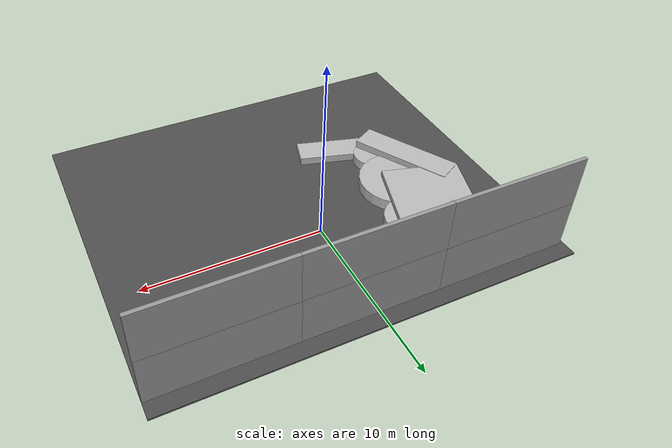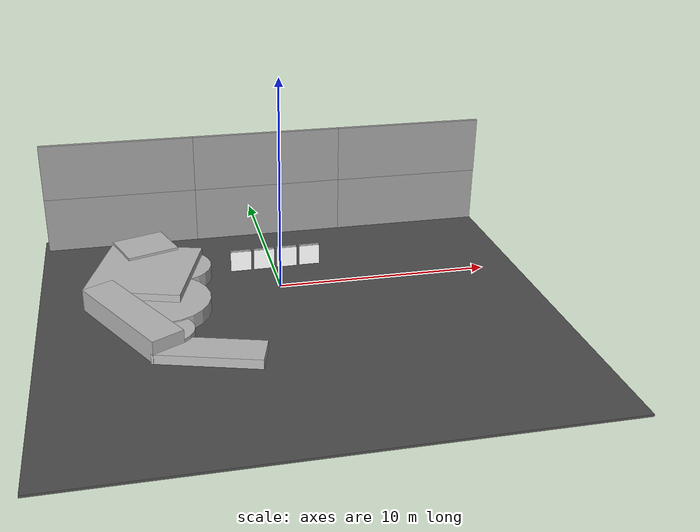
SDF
<sdf version="1.6">
 <world name="default">
  <light name="sun" type="directional">
   <pose>0 0 10 0 -0 0</pose>
   <diffuse>0.8 0.8 0.8 1</diffuse>
   <specular>0.2 0.2 0.2 1</specular>
   <attenuation>
    <range>1000</range>
    <constant>0.9</constant>
    <linear>0.01</linear>
    <quadratic>0.001</quadratic>
   </attenuation>
   <direction>-0.5 0.1 -0.9</direction>
  </light>
  <gravity>0 0 -9.8</gravity>
  <magnetic_field>6e-06 2.3e-05 -4.2e-05</magnetic_field>
  <atmosphere type="adiabatic"/>
  <physics name="default_physics" default="0" type="ode">
   <max_step_size>0.001</max_step_size>
   <real_time_factor>1</real_time_factor>
   <real_time_update_rate>1000</real_time_update_rate>
  </physics>
  <scene><ambient>0.4 0.4 0.4 1</ambient><background>0.7 0.7 0.7 1</background><shadows>1</shadows></scene>
  <audio><device>default</device></audio>
  <spherical_coordinates>
   <surface_model>EARTH_WGS84</surface_model>
   <latitude_deg>0</latitude_deg>
   <longitude_deg>0</longitude_deg>
   <elevation>0</elevation>
   <heading_deg>0</heading_deg>
  </spherical_coordinates>
  <model name="grey_wall">
   <static>1</static>
   <link name="link">
    <pose>0 0 1.4 0 -0 0</pose>
    <collision name="collision"><geometry><box><size>7.5 0.2 2.8</size></box></geometry></collision>
    <visual name="visual">
     <cast_shadows>0</cast_shadows>
     <geometry><box><size>7.5 0.2 2.8</size></box></geometry>
     <material>
      <script>
       <uri>model://grey_wall/materials/scripts</uri>
       <uri>model://grey_wall/materials/textures</uri>
       <name>vrc/grey_wall</name>
      </script>
     </material>
    </visual>
   </link>
   <pose>0.425107 6.09288 0 0 -0 0</pose>
  </model>
  <model name="grey_wall_clone">
   <static>1</static>
   <link name="link">
    <pose>0 0 1.4 0 -0 0</pose>
    <collision name="collision"><geometry><box><size>7.5 0.2 2.8</size></box></geometry></collision>
    <visual name="visual">
     <cast_shadows>0</cast_shadows>
     <geometry><box><size>7.5 0.2 2.8</size></box></geometry>
     <material>
      <script>
       <uri>model://grey_wall/materials/scripts</uri>
       <uri>model://grey_wall/materials/textures</uri>
       <name>vrc/grey_wall</name>
      </script>
     </material>
    </visual>
   </link>
   <pose>-7.06982 6.09288 0 0 -0 0</pose>
  </model>
  <model name="grey_wall_clone_clone">
   <static>1</static>
   <link name="link">
    <pose>0 0 1.4 0 -0 0</pose>
    <collision name="collision"><geometry><box><size>7.5 0.2 2.8</size></box></geometry></collision>
    <visual name="visual">
     <cast_shadows>0</cast_shadows>
     <geometry><box><size>7.5 0.2 2.8</size></box></geometry>
     <material>
      <script>
       <uri>model://grey_wall/materials/scripts</uri>
       <uri>model://grey_wall/materials/textures</uri>
       <name>vrc/grey_wall</name>
      </script>
     </material>
    </visual>
   </link>
   <pose>7.89356 6.09616 0 0 -0 0</pose>
  </model>
  <model name="grey_wall_clone_0">
   <static>1</static>
   <link name="link">
    <pose>0 0 1.4 0 -0 0</pose>
    <collision name="collision"><geometry><box><size>7.5 0.2 2.8</size></box></geometry></collision>
    <visual name="visual">
     <cast_shadows>0</cast_shadows>
     <geometry><box><size>7.5 0.2 2.8</size></box></geometry>
     <material>
      <script>
       <uri>model://grey_wall/materials/scripts</uri>
       <uri>model://grey_wall/materials/textures</uri>
       <name>vrc/grey_wall</name>
      </script>
     </material>
    </visual>
   </link>
   <pose>0.425107 6.09288 2.79141 0 -0 0</pose>
  </model>
  <model name="grey_wall_clone_0_clone">
   <static>1</static>
   <link name="link">
    <pose>0 0 1.4 0 -0 0</pose>
    <collision name="collision"><geometry><box><size>7.5 0.2 2.8</size></box></geometry></collision>
    <visual name="visual">
     <cast_shadows>0</cast_shadows>
     <geometry><box><size>7.5 0.2 2.8</size></box></geometry>
     <material>
      <script>
       <uri>model://grey_wall/materials/scripts</uri>
       <uri>model://grey_wall/materials/textures</uri>
       <name>vrc/grey_wall</name>
      </script>
     </material>
    </visual>
   </link>
   <pose>-7.07374 6.09288 2.79141 0 -0 0</pose>
  </model>
  <model name="grey_wall_clone_0_clone_0">
   <static>1</static>
   <link name="link">
    <pose>0 0 1.4 0 -0 0</pose>
    <collision name="collision"><geometry><box><size>7.5 0.2 2.8</size></box></geometry></collision>
    <visual name="visual">
     <cast_shadows>0</cast_shadows>
     <geometry><box><size>7.5 0.2 2.8</size></box></geometry>
     <material>
      <script>
       <uri>model://grey_wall/materials/scripts</uri>
       <uri>model://grey_wall/materials/textures</uri>
       <name>vrc/grey_wall</name>
      </script>
     </material>
    </visual>
   </link>
   <pose>7.90341 6.09288 2.79141 0 -0 0</pose>
  </model>
  <model name="asphalt_plane">
   <static>1</static>
   <link name="link">
    <collision name="collision"><geometry><box><size>22.6823 20 0.1</size></box></geometry></collision>
    <visual name="visual">
     <cast_shadows>0</cast_shadows>
     <geometry><box><size>22.6823 20 0.1</size></box></geometry>
     <material>
      <script>
       <uri>model://asphalt_plane/materials/scripts</uri>
       <uri>model://asphalt_plane/materials/textures</uri>
       <name>vrc/asphalt</name>
      </script>
     </material>
    </visual>
   </link>
   <pose>0.315621 -2.92214 0 0 -0 0</pose>
  </model>
  <model name="TrainingStructure_0">
   <link name="link_0">
    <inertial>
     <mass>21.5791</mass>
     <inertia><ixx>45.0346</ixx><ixy>0</ixy><ixz>0</ixz><iyy>36.626</iyy><iyz>0</iyz><izz>78.0641</izz></inertia>
    </inertial>
    <pose>0.119568 2.23673 0.114789 0 0 -0.639786</pose>
    <visual name="visual">
     <geometry><box><size>4.40084 4.90341 1</size></box></geometry>
     <material>
      <lighting>1</lighting>
      <script>
       <uri>/root/model_editor_models/TrainingStructure/materials/scripts</uri>
       <uri>/root/model_editor_models/TrainingStructure/materials/textures</uri>
       <name>TrainingStructure/Diffuse</name>
      </script>
      <emissive>0 0 0 1</emissive>
     </material>
    </visual>
    <collision name="collision">
     <geometry><box><size>4.40084 4.90341 1</size></box></geometry>
     <surface>
      <friction>
       <ode><mu>1</mu><mu2>1</mu2><fdir1>0 0 0</fdir1><slip1>0</slip1><slip2>0</slip2></ode>
       <torsional>
        <coefficient>1</coefficient>
        <patch_radius>0</patch_radius>
        <surface_radius>0</surface_radius>
        <use_patch_radius>1</use_patch_radius>
        <ode><slip>0</slip></ode>
       </torsional>
      </friction>
      <bounce><restitution_coefficient>0</restitution_coefficient><threshold>1e+06</threshold></bounce>
      <contact>
       <collide_without_contact>0</collide_without_contact>
       <collide_without_contact_bitmask>1</collide_without_contact_bitmask>
       <collide_bitmask>1</collide_bitmask>
       <ode>
        <soft_cfm>0</soft_cfm>
        <soft_erp>0.2</soft_erp>
        <kp>1e+13</kp>
        <kd>1</kd>
        <max_vel>0.01</max_vel>
        <min_depth>0</min_depth>
       </ode>
       <bullet>
        <split_impulse>1</split_impulse>
        <split_impulse_penetration_threshold>-0.01</split_impulse_penetration_threshold>
        <soft_cfm>0</soft_cfm>
        <soft_erp>0.2</soft_erp>
        <kp>1e+13</kp>
        <kd>1</kd>
       </bullet>
      </contact>
     </surface>
    </collision>
   </link>
   <link name="link_1">
    <inertial>
     <mass>12.8917</mass>
     <inertia><ixx>16.369</ixx><ixy>0</ixy><ixz>0</ixz><iyy>16.369</iyy><iyz>0</iyz><izz>31.8224</izz></inertia>
    </inertial>
    <pose>-0.158587 -0.257007 -0.05951 0 -0 0</pose>
    <visual name="visual">
     <geometry><cylinder><radius>2.22191</radius><length>0.652816</length></cylinder></geometry>
     <material>
      <lighting>1</lighting>
      <script>
       <uri>/root/model_editor_models/TrainingStructure/materials/scripts</uri>
       <uri>/root/model_editor_models/TrainingStructure/materials/textures</uri>
       <name>TrainingStructure/Diffuse</name>
      </script>
      <emissive>0 0 0 1</emissive>
     </material>
    </visual>
    <collision name="collision">
     <geometry><cylinder><radius>2.22191</radius><length>0.652816</length></cylinder></geometry>
     <surface>
      <friction>
       <ode><mu>1</mu><mu2>1</mu2><fdir1>0 0 0</fdir1><slip1>0</slip1><slip2>0</slip2></ode>
       <torsional>
        <coefficient>1</coefficient>
        <patch_radius>0</patch_radius>
        <surface_radius>0</surface_radius>
        <use_patch_radius>1</use_patch_radius>
        <ode><slip>0</slip></ode>
       </torsional>
      </friction>
      <bounce><restitution_coefficient>0</restitution_coefficient><threshold>1e+06</threshold></bounce>
      <contact>
       <collide_without_contact>0</collide_without_contact>
       <collide_without_contact_bitmask>1</collide_without_contact_bitmask>
       <collide_bitmask>1</collide_bitmask>
       <ode>
        <soft_cfm>0</soft_cfm>
        <soft_erp>0.2</soft_erp>
        <kp>1e+13</kp>
        <kd>1</kd>
        <max_vel>0.01</max_vel>
        <min_depth>0</min_depth>
       </ode>
       <bullet>
        <split_impulse>1</split_impulse>
        <split_impulse_penetration_threshold>-0.01</split_impulse_penetration_threshold>
        <soft_cfm>0</soft_cfm>
        <soft_erp>0.2</soft_erp>
        <kp>1e+13</kp>
        <kd>1</kd>
       </bullet>
      </contact>
     </surface>
    </collision>
   </link>
   <link name="link_1_clone">
    <inertial>
     <mass>2.94105</mass>
     <inertia><ixx>1.04406</ixx><ixy>0</ixy><ixz>0</ixz><iyy>1.04406</iyy><iyz>0</iyz><izz>1.93511</izz></inertia>
    </inertial>
    <pose>-0.947783 -2.80294 -0.070976 0 -0 0</pose>
    <visual name="visual">
     <geometry><cylinder><radius>1.14714</radius><length>0.558724</length></cylinder></geometry>
     <material>
      <lighting>1</lighting>
      <script>
       <uri>/root/model_editor_models/TrainingStructure/materials/scripts</uri>
       <uri>/root/model_editor_models/TrainingStructure/materials/textures</uri>
       <name>TrainingStructure/Diffuse</name>
      </script>
      <shader type="pixel"/>
      <emissive>0 0 0 1</emissive>
     </material>
    </visual>
    <collision name="collision">
     <geometry><cylinder><radius>1.14714</radius><length>0.558724</length></cylinder></geometry>
     <surface>
      <friction>
       <ode><mu>1</mu><mu2>1</mu2><fdir1>0 0 0</fdir1><slip1>0</slip1><slip2>0</slip2></ode>
       <torsional>
        <coefficient>1</coefficient>
        <patch_radius>0</patch_radius>
        <surface_radius>0</surface_radius>
        <use_patch_radius>1</use_patch_radius>
        <ode><slip>0</slip></ode>
       </torsional>
      </friction>
      <bounce><restitution_coefficient>0</restitution_coefficient><threshold>1e+06</threshold></bounce>
      <contact>
       <collide_without_contact>0</collide_without_contact>
       <collide_without_contact_bitmask>1</collide_without_contact_bitmask>
       <collide_bitmask>1</collide_bitmask>
       <ode>
        <soft_cfm>0</soft_cfm>
        <soft_erp>0.2</soft_erp>
        <kp>1e+13</kp>
        <kd>1</kd>
        <max_vel>0.01</max_vel>
        <min_depth>0</min_depth>
       </ode>
       <bullet>
        <split_impulse>1</split_impulse>
        <split_impulse_penetration_threshold>-0.01</split_impulse_penetration_threshold>
        <soft_cfm>0</soft_cfm>
        <soft_erp>0.2</soft_erp>
        <kp>1e+13</kp>
        <kd>1</kd>
       </bullet>
      </contact>
     </surface>
    </collision>
   </link>
   <link name="link_1_clone_clone">
    <inertial>
     <mass>6.83093</mass>
     <inertia><ixx>4.70981</ixx><ixy>0</ixy><ixz>0</ixz><iyy>4.70981</iyy><iyz>0</iyz><izz>8.93444</izz></inertia>
    </inertial>
    <pose>1.79907 2.40152 -0.059511 0 -0 0</pose>
    <visual name="visual">
     <geometry><cylinder><radius>1.61737</radius><length>0.652816</length></cylinder></geometry>
     <material>
      <lighting>1</lighting>
      <script>
       <uri>/root/model_editor_models/TrainingStructure/materials/scripts</uri>
       <uri>/root/model_editor_models/TrainingStructure/materials/textures</uri>
       <name>TrainingStructure/Diffuse</name>
      </script>
      <shader type="pixel"/>
      <emissive>0 0 0 1</emissive>
     </material>
    </visual>
    <collision name="collision">
     <geometry><cylinder><radius>1.61737</radius><length>0.652816</length></cylinder></geometry>
     <surface>
      <friction>
       <ode><mu>1</mu><mu2>1</mu2><fdir1>0 0 0</fdir1><slip1>0</slip1><slip2>0</slip2></ode>
       <torsional>
        <coefficient>1</coefficient>
        <patch_radius>0</patch_radius>
        <surface_radius>0</surface_radius>
        <use_patch_radius>1</use_patch_radius>
        <ode><slip>0</slip></ode>
       </torsional>
      </friction>
      <bounce><restitution_coefficient>0</restitution_coefficient><threshold>1e+06</threshold></bounce>
      <contact>
       <collide_without_contact>0</collide_without_contact>
       <collide_without_contact_bitmask>1</collide_without_contact_bitmask>
       <collide_bitmask>1</collide_bitmask>
       <ode>
        <soft_cfm>0</soft_cfm>
        <soft_erp>0.2</soft_erp>
        <kp>1e+13</kp>
        <kd>1</kd>
        <max_vel>0.01</max_vel>
        <min_depth>0</min_depth>
       </ode>
       <bullet>
        <split_impulse>1</split_impulse>
        <split_impulse_penetration_threshold>-0.01</split_impulse_penetration_threshold>
        <soft_cfm>0</soft_cfm>
        <soft_erp>0.2</soft_erp>
        <kp>1e+13</kp>
        <kd>1</kd>
       </bullet>
      </contact>
     </surface>
    </collision>
   </link>
   <link name="link_2">
    <inertial>
     <mass>9.3389</mass>
     <inertia><ixx>27.1825</ixx><ixy>0</ixy><ixz>0</ixz><iyy>2.65975</iyy><iyz>0</iyz><izz>28.0899</izz></inertia>
    </inertial>
    <pose>-1.89856 -1.16787 0.114789 0 -0 0.157806</pose>
    <visual name="visual">
     <geometry><box><size>1.51388 5.81397 1.06104</size></box></geometry>
     <material>
      <lighting>1</lighting>
      <script>
       <uri>/root/model_editor_models/TrainingStructure/materials/scripts</uri>
       <uri>/root/model_editor_models/TrainingStructure/materials/textures</uri>
       <name>TrainingStructure/Diffuse</name>
      </script>
      <emissive>0 0 0 1</emissive>
     </material>
    </visual>
    <collision name="collision">
     <geometry><box><size>1.51388 5.81397 1.06104</size></box></geometry>
     <surface>
      <friction>
       <ode><mu>1</mu><mu2>1</mu2><fdir1>0 0 0</fdir1><slip1>0</slip1><slip2>0</slip2></ode>
       <torsional>
        <coefficient>1</coefficient>
        <patch_radius>0</patch_radius>
        <surface_radius>0</surface_radius>
        <use_patch_radius>1</use_patch_radius>
        <ode><slip>0</slip></ode>
       </torsional>
      </friction>
      <bounce><restitution_coefficient>0</restitution_coefficient><threshold>1e+06</threshold></bounce>
      <contact>
       <collide_without_contact>0</collide_without_contact>
       <collide_without_contact_bitmask>1</collide_without_contact_bitmask>
       <collide_bitmask>1</collide_bitmask>
       <ode>
        <soft_cfm>0</soft_cfm>
        <soft_erp>0.2</soft_erp>
        <kp>1e+13</kp>
        <kd>1</kd>
        <max_vel>0.01</max_vel>
        <min_depth>0</min_depth>
       </ode>
       <bullet>
        <split_impulse>1</split_impulse>
        <split_impulse_penetration_threshold>-0.01</split_impulse_penetration_threshold>
        <soft_cfm>0</soft_cfm>
        <soft_erp>0.2</soft_erp>
        <kp>1e+13</kp>
        <kd>1</kd>
       </bullet>
      </contact>
     </surface>
    </collision>
   </link>
   <link name="link_2_clone">
    <inertial>
     <mass>3.02559</mass>
     <inertia><ixx>5.33093</ixx><ixy>0</ixy><ixz>0</ixz><iyy>0.625903</iyy><iyz>0</iyz><izz>5.86072</izz></inertia>
    </inertial>
    <pose>0.034696 -4.82297 -0.165836 0 -0 0.944597</pose>
    <visual name="visual">
     <geometry><box><size>1.51388 4.57742 0.436586</size></box></geometry>
     <material>
      <lighting>1</lighting>
      <script>
       <uri>/root/model_editor_models/TrainingStructure/materials/scripts</uri>
       <uri>/root/model_editor_models/TrainingStructure/materials/textures</uri>
       <name>TrainingStructure/Diffuse</name>
      </script>
      <shader type="pixel"/>
      <emissive>0 0 0 1</emissive>
     </material>
    </visual>
    <collision name="collision">
     <geometry><box><size>1.51388 4.57742 0.436586</size></box></geometry>
     <surface>
      <friction>
       <ode><mu>1</mu><mu2>1</mu2><fdir1>0 0 0</fdir1><slip1>0</slip1><slip2>0</slip2></ode>
       <torsional>
        <coefficient>1</coefficient>
        <patch_radius>0</patch_radius>
        <surface_radius>0</surface_radius>
        <use_patch_radius>1</use_patch_radius>
        <ode><slip>0</slip></ode>
       </torsional>
      </friction>
      <bounce><restitution_coefficient>0</restitution_coefficient><threshold>1e+06</threshold></bounce>
      <contact>
       <collide_without_contact>0</collide_without_contact>
       <collide_without_contact_bitmask>1</collide_without_contact_bitmask>
       <collide_bitmask>1</collide_bitmask>
       <ode>
        <soft_cfm>0</soft_cfm>
        <soft_erp>0.2</soft_erp>
        <kp>1e+13</kp>
        <kd>1</kd>
        <max_vel>0.01</max_vel>
        <min_depth>0</min_depth>
       </ode>
       <bullet>
        <split_impulse>1</split_impulse>
        <split_impulse_penetration_threshold>-0.01</split_impulse_penetration_threshold>
        <soft_cfm>0</soft_cfm>
        <soft_erp>0.2</soft_erp>
        <kp>1e+13</kp>
        <kd>1</kd>
       </bullet>
      </contact>
     </surface>
    </collision>
   </link>
   <link name="link_4">
    <inertial>
     <mass>6.74556</mass>
     <inertia><ixx>3.49935</ixx><ixy>0</ixy><ixz>0</ixz><iyy>4.40667</iyy><iyz>0</iyz><izz>6.16988</izz></inertia>
    </inertial>
    <pose>1.05159 4.41254 0.114789 0 0 -0.009447</pose>
    <visual name="visual">
     <geometry><box><size>2.50898 2.16354 1.24268</size></box></geometry>
     <material>
      <lighting>1</lighting>
      <script>
       <uri>/root/model_editor_models/TrainingStructure/materials/scripts</uri>
       <uri>/root/model_editor_models/TrainingStructure/materials/textures</uri>
       <name>TrainingStructure/Diffuse</name>
      </script>
      <emissive>0 0 0 1</emissive>
     </material>
    </visual>
    <collision name="collision">
     <geometry><box><size>2.50898 2.16354 1.24268</size></box></geometry>
     <surface>
      <friction>
       <ode><mu>1</mu><mu2>1</mu2><fdir1>0 0 0</fdir1><slip1>0</slip1><slip2>0</slip2></ode>
       <torsional>
        <coefficient>1</coefficient>
        <patch_radius>0</patch_radius>
        <surface_radius>0</surface_radius>
        <use_patch_radius>1</use_patch_radius>
        <ode><slip>0</slip></ode>
       </torsional>
      </friction>
      <bounce><restitution_coefficient>0</restitution_coefficient><threshold>1e+06</threshold></bounce>
      <contact>
       <collide_without_contact>0</collide_without_contact>
       <collide_without_contact_bitmask>1</collide_without_contact_bitmask>
       <collide_bitmask>1</collide_bitmask>
       <ode>
        <soft_cfm>0</soft_cfm>
        <soft_erp>0.2</soft_erp>
        <kp>1e+13</kp>
        <kd>1</kd>
        <max_vel>0.01</max_vel>
        <min_depth>0</min_depth>
       </ode>
       <bullet>
        <split_impulse>1</split_impulse>
        <split_impulse_penetration_threshold>-0.01</split_impulse_penetration_threshold>
        <soft_cfm>0</soft_cfm>
        <soft_erp>0.2</soft_erp>
        <kp>1e+13</kp>
        <kd>1</kd>
       </bullet>
      </contact>
     </surface>
    </collision>
   </link>
   <joint name="link_0_JOINT_0" type="fixed">
    <parent>link_0</parent>
    <child>link_4</child>
    <physics>
     <ode><limit><cfm>0</cfm><erp>0.2</erp></limit><suspension><cfm>0</cfm><erp>0.2</erp></suspension></ode>
    </physics>
   </joint>
   <joint name="link_0_JOINT_1" type="fixed">
    <parent>link_0</parent>
    <child>link_1_clone_clone</child>
    <physics>
     <ode><limit><cfm>0</cfm><erp>0.2</erp></limit><suspension><cfm>0</cfm><erp>0.2</erp></suspension></ode>
    </physics>
   </joint>
   <joint name="link_0_JOINT_2" type="fixed">
    <parent>link_0</parent>
    <child>link_1</child>
    <physics>
     <ode><limit><cfm>0</cfm><erp>0.2</erp></limit><suspension><cfm>0</cfm><erp>0.2</erp></suspension></ode>
    </physics>
   </joint>
   <joint name="link_0_JOINT_3" type="fixed">
    <parent>link_0</parent>
    <child>link_2</child>
    <physics>
     <ode><limit><cfm>0</cfm><erp>0.2</erp></limit><suspension><cfm>0</cfm><erp>0.2</erp></suspension></ode>
    </physics>
   </joint>
   <joint name="link_2_JOINT_4" type="fixed">
    <parent>link_2</parent>
    <child>link_1_clone</child>
    <physics>
     <ode><limit><cfm>0</cfm><erp>0.2</erp></limit><suspension><cfm>0</cfm><erp>0.2</erp></suspension></ode>
    </physics>
   </joint>
   <joint name="link_2_JOINT_5" type="fixed">
    <parent>link_2</parent>
    <child>link_2_clone</child>
    <physics>
     <ode><limit><cfm>0</cfm><erp>0.2</erp></limit><suspension><cfm>0</cfm><erp>0.2</erp></suspension></ode>
    </physics>
   </joint>
   <static>1</static>
   <pose>-5.58597 -1.16334 0.434654 0 -0 0.341458</pose>
  </model>
  <model name="marker18_box">
   <link name="marker">
    <inertial>
     <mass>0.1</mass>
     <inertia><ixx>0</ixx><ixy>0</ixy><ixz>0</ixz><iyy>0</iyy><iyz>0</iyz><izz>0</izz></inertia>
    </inertial>
    <self_collide>1</self_collide>
    <pose>0 0 0.25 0 -0 0</pose>
    <visual name="visual">
     <geometry><box><size>1 0.001 1</size></box></geometry>
     <material>
      <script>
       <uri>/root/model_editor_models/marker18/material/scripts</uri>
       <uri>/root/model_editor_models/marker18/material/textures</uri>
       <name>Aruco/marker18</name>
      </script>
      <shader type="pixel"><normal_map>__default__</normal_map></shader>
      <emissive>0 0 0 1</emissive>
      <ambient>1 1 1 1</ambient>
      <diffuse>1 1 1 1</diffuse>
      <specular>0 0 0 1</specular>
     </material>
    </visual>
    <collision name="collision">
     <geometry><box><size>1 0.001 1</size></box></geometry>
     <surface>
      <friction>
       <ode><mu>1</mu><mu2>1</mu2><fdir1>0 0 0</fdir1><slip1>0</slip1><slip2>0</slip2></ode>
       <torsional>
        <coefficient>1</coefficient>
        <patch_radius>0</patch_radius>
        <surface_radius>0</surface_radius>
        <use_patch_radius>1</use_patch_radius>
        <ode><slip>0</slip></ode>
       </torsional>
      </friction>
      <bounce><restitution_coefficient>0</restitution_coefficient><threshold>1e+06</threshold></bounce>
      <contact>
       <collide_without_contact>0</collide_without_contact>
       <collide_without_contact_bitmask>1</collide_without_contact_bitmask>
       <collide_bitmask>1</collide_bitmask>
       <ode>
        <soft_cfm>0</soft_cfm>
        <soft_erp>0.2</soft_erp>
        <kp>1e+13</kp>
        <kd>1</kd>
        <max_vel>0.01</max_vel>
        <min_depth>0</min_depth>
       </ode>
       <bullet>
        <split_impulse>1</split_impulse>
        <split_impulse_penetration_threshold>-0.01</split_impulse_penetration_threshold>
        <soft_cfm>0</soft_cfm>
        <soft_erp>0.2</soft_erp>
        <kp>1e+13</kp>
        <kd>1</kd>
       </bullet>
      </contact>
     </surface>
    </collision>
   </link>
   <link name="link_1">
    <inertial>
     <mass>1</mass>
     <inertia>
      <ixx>0.166667</ixx>
      <ixy>0</ixy>
      <ixz>0</ixz>
      <iyy>0.166667</iyy>
      <iyz>0</iyz>
      <izz>0.166667</izz>
     </inertia>
    </inertial>
    <pose>0 0.11 0.25 0 -0 0</pose>
    <visual name="visual">
     <geometry><box><size>1 0.2 1</size></box></geometry>
     <material>
      <lighting>1</lighting>
      <script><uri>file://media/materials/scripts/gazebo.material</uri><name>Gazebo/Grey</name></script>
      <shader type="pixel"><normal_map>__default__</normal_map></shader>
      <emissive>0 0 0 1</emissive>
      <ambient>0.3 0.3 0.3 1</ambient>
      <diffuse>0.7 0.7 0.7 1</diffuse>
      <specular>0.01 0.01 0.01 1</specular>
     </material>
    </visual>
    <collision name="collision">
     <geometry><box><size>1 0.2 1</size></box></geometry>
     <surface>
      <friction>
       <ode><mu>1</mu><mu2>1</mu2><fdir1>0 0 0</fdir1><slip1>0</slip1><slip2>0</slip2></ode>
       <torsional>
        <coefficient>1</coefficient>
        <patch_radius>0</patch_radius>
        <surface_radius>0</surface_radius>
        <use_patch_radius>1</use_patch_radius>
        <ode><slip>0</slip></ode>
       </torsional>
      </friction>
      <bounce><restitution_coefficient>0</restitution_coefficient><threshold>1e+06</threshold></bounce>
      <contact>
       <collide_without_contact>0</collide_without_contact>
       <collide_without_contact_bitmask>1</collide_without_contact_bitmask>
       <collide_bitmask>1</collide_bitmask>
       <ode>
        <soft_cfm>0</soft_cfm>
        <soft_erp>0.2</soft_erp>
        <kp>1e+13</kp>
        <kd>1</kd>
        <max_vel>0.01</max_vel>
        <min_depth>0</min_depth>
       </ode>
       <bullet>
        <split_impulse>1</split_impulse>
        <split_impulse_penetration_threshold>-0.01</split_impulse_penetration_threshold>
        <soft_cfm>0</soft_cfm>
        <soft_erp>0.2</soft_erp>
        <kp>1e+13</kp>
        <kd>1</kd>
       </bullet>
      </contact>
     </surface>
    </collision>
   </link>
   <joint name="link_1_JOINT_3" type="fixed">
    <parent>link_1</parent>
    <child>marker</child>
    <physics>
     <ode><limit><cfm>0</cfm><erp>0.2</erp></limit><suspension><cfm>0</cfm><erp>0.2</erp></suspension></ode>
    </physics>
   </joint>
   <static>0</static>
   <pose>0.660615 1.9331 0.300001 0 -2e-06 0.003123</pose>
  </model>
  <model name="marker32_box">
   <link name="marker">
    <inertial>
     <mass>0.1</mass>
     <inertia><ixx>0</ixx><ixy>0</ixy><ixz>0</ixz><iyy>0</iyy><iyz>0</iyz><izz>0</izz></inertia>
    </inertial>
    <self_collide>1</self_collide>
    <pose>0 0 0.25 0 -0 0</pose>
    <visual name="visual">
     <geometry><box><size>1 0.001 1</size></box></geometry>
     <material>
      <script>
       <uri>/root/model_editor_models/marker32/material/scripts</uri>
       <uri>/root/model_editor_models/marker32/material/textures</uri>
       <name>Aruco/marker32</name>
      </script>
      <shader type="pixel"><normal_map>__default__</normal_map></shader>
      <emissive>0 0 0 1</emissive>
      <ambient>1 1 1 1</ambient>
      <diffuse>1 1 1 1</diffuse>
      <specular>0 0 0 1</specular>
     </material>
    </visual>
    <collision name="collision">
     <geometry><box><size>1 0.001 1</size></box></geometry>
     <surface>
      <friction>
       <ode><mu>1</mu><mu2>1</mu2><fdir1>0 0 0</fdir1><slip1>0</slip1><slip2>0</slip2></ode>
       <torsional>
        <coefficient>1</coefficient>
        <patch_radius>0</patch_radius>
        <surface_radius>0</surface_radius>
        <use_patch_radius>1</use_patch_radius>
        <ode><slip>0</slip></ode>
       </torsional>
      </friction>
      <bounce><restitution_coefficient>0</restitution_coefficient><threshold>1e+06</threshold></bounce>
      <contact>
       <collide_without_contact>0</collide_without_contact>
       <collide_without_contact_bitmask>1</collide_without_contact_bitmask>
       <collide_bitmask>1</collide_bitmask>
       <ode>
        <soft_cfm>0</soft_cfm>
        <soft_erp>0.2</soft_erp>
        <kp>1e+13</kp>
        <kd>1</kd>
        <max_vel>0.01</max_vel>
        <min_depth>0</min_depth>
       </ode>
       <bullet>
        <split_impulse>1</split_impulse>
        <split_impulse_penetration_threshold>-0.01</split_impulse_penetration_threshold>
        <soft_cfm>0</soft_cfm>
        <soft_erp>0.2</soft_erp>
        <kp>1e+13</kp>
        <kd>1</kd>
       </bullet>
      </contact>
     </surface>
    </collision>
   </link>
   <link name="link_1">
    <inertial>
     <mass>1</mass>
     <inertia>
      <ixx>0.166667</ixx>
      <ixy>0</ixy>
      <ixz>0</ixz>
      <iyy>0.166667</iyy>
      <iyz>0</iyz>
      <izz>0.166667</izz>
     </inertia>
    </inertial>
    <pose>0 0.11 0.25 0 -0 0</pose>
    <visual name="visual">
     <geometry><box><size>1 0.2 1</size></box></geometry>
     <material>
      <lighting>1</lighting>
      <script><uri>file://media/materials/scripts/gazebo.material</uri><name>Gazebo/Grey</name></script>
      <shader type="pixel"><normal_map>__default__</normal_map></shader>
      <emissive>0 0 0 1</emissive>
      <ambient>0.3 0.3 0.3 1</ambient>
      <diffuse>0.7 0.7 0.7 1</diffuse>
      <specular>0.01 0.01 0.01 1</specular>
     </material>
    </visual>
    <collision name="collision">
     <geometry><box><size>1 0.2 1</size></box></geometry>
     <surface>
      <friction>
       <ode><mu>1</mu><mu2>1</mu2><fdir1>0 0 0</fdir1><slip1>0</slip1><slip2>0</slip2></ode>
       <torsional>
        <coefficient>1</coefficient>
        <patch_radius>0</patch_radius>
        <surface_radius>0</surface_radius>
        <use_patch_radius>1</use_patch_radius>
        <ode><slip>0</slip></ode>
       </torsional>
      </friction>
      <bounce><restitution_coefficient>0</restitution_coefficient><threshold>1e+06</threshold></bounce>
      <contact>
       <collide_without_contact>0</collide_without_contact>
       <collide_without_contact_bitmask>1</collide_without_contact_bitmask>
       <collide_bitmask>1</collide_bitmask>
       <ode>
        <soft_cfm>0</soft_cfm>
        <soft_erp>0.2</soft_erp>
        <kp>1e+13</kp>
        <kd>1</kd>
        <max_vel>0.01</max_vel>
        <min_depth>0</min_depth>
       </ode>
       <bullet>
        <split_impulse>1</split_impulse>
        <split_impulse_penetration_threshold>-0.01</split_impulse_penetration_threshold>
        <soft_cfm>0</soft_cfm>
        <soft_erp>0.2</soft_erp>
        <kp>1e+13</kp>
        <kd>1</kd>
       </bullet>
      </contact>
     </surface>
    </collision>
   </link>
   <joint name="link_1_JOINT_3" type="fixed">
    <parent>link_1</parent>
    <child>marker</child>
    <physics>
     <ode><limit><cfm>0</cfm><erp>0.2</erp></limit><suspension><cfm>0</cfm><erp>0.2</erp></suspension></ode>
    </physics>
   </joint>
   <static>0</static>
   <pose>1.78636 1.95524 0.3 0 -0 0.002799</pose>
  </model>
  <model name="marker38_box">
   <link name="marker">
    <inertial>
     <mass>0.1</mass>
     <inertia><ixx>0</ixx><ixy>0</ixy><ixz>0</ixz><iyy>0</iyy><iyz>0</iyz><izz>0</izz></inertia>
    </inertial>
    <self_collide>1</self_collide>
    <pose>0 0 0.25 0 -0 0</pose>
    <visual name="visual">
     <geometry><box><size>1 0.001 1</size></box></geometry>
     <material>
      <script>
       <uri>/root/model_editor_models/marker38/material/scripts</uri>
       <uri>/root/model_editor_models/marker38/material/textures</uri>
       <name>Aruco/marker38</name>
      </script>
      <shader type="pixel"><normal_map>__default__</normal_map></shader>
      <emissive>0 0 0 1</emissive>
      <ambient>1 1 1 1</ambient>
      <diffuse>1 1 1 1</diffuse>
      <specular>0 0 0 1</specular>
     </material>
    </visual>
    <collision name="collision">
     <geometry><box><size>1 0.001 1</size></box></geometry>
     <surface>
      <friction>
       <ode><mu>1</mu><mu2>1</mu2><fdir1>0 0 0</fdir1><slip1>0</slip1><slip2>0</slip2></ode>
       <torsional>
        <coefficient>1</coefficient>
        <patch_radius>0</patch_radius>
        <surface_radius>0</surface_radius>
        <use_patch_radius>1</use_patch_radius>
        <ode><slip>0</slip></ode>
       </torsional>
      </friction>
      <bounce><restitution_coefficient>0</restitution_coefficient><threshold>1e+06</threshold></bounce>
      <contact>
       <collide_without_contact>0</collide_without_contact>
       <collide_without_contact_bitmask>1</collide_without_contact_bitmask>
       <collide_bitmask>1</collide_bitmask>
       <ode>
        <soft_cfm>0</soft_cfm>
        <soft_erp>0.2</soft_erp>
        <kp>1e+13</kp>
        <kd>1</kd>
        <max_vel>0.01</max_vel>
        <min_depth>0</min_depth>
       </ode>
       <bullet>
        <split_impulse>1</split_impulse>
        <split_impulse_penetration_threshold>-0.01</split_impulse_penetration_threshold>
        <soft_cfm>0</soft_cfm>
        <soft_erp>0.2</soft_erp>
        <kp>1e+13</kp>
        <kd>1</kd>
       </bullet>
      </contact>
     </surface>
    </collision>
   </link>
   <link name="link_1">
    <inertial>
     <mass>1</mass>
     <inertia>
      <ixx>0.166667</ixx>
      <ixy>0</ixy>
      <ixz>0</ixz>
      <iyy>0.166667</iyy>
      <iyz>0</iyz>
      <izz>0.166667</izz>
     </inertia>
    </inertial>
    <pose>0 0.11 0.25 0 -0 0</pose>
    <visual name="visual">
     <geometry><box><size>1 0.2 1</size></box></geometry>
     <material>
      <lighting>1</lighting>
      <script><uri>file://media/materials/scripts/gazebo.material</uri><name>Gazebo/Grey</name></script>
      <shader type="pixel"><normal_map>__default__</normal_map></shader>
      <emissive>0 0 0 1</emissive>
      <ambient>0.3 0.3 0.3 1</ambient>
      <diffuse>0.7 0.7 0.7 1</diffuse>
      <specular>0.01 0.01 0.01 1</specular>
     </material>
    </visual>
    <collision name="collision">
     <geometry><box><size>1 0.2 1</size></box></geometry>
     <surface>
      <friction>
       <ode><mu>1</mu><mu2>1</mu2><fdir1>0 0 0</fdir1><slip1>0</slip1><slip2>0</slip2></ode>
       <torsional>
        <coefficient>1</coefficient>
        <patch_radius>0</patch_radius>
        <surface_radius>0</surface_radius>
        <use_patch_radius>1</use_patch_radius>
        <ode><slip>0</slip></ode>
       </torsional>
      </friction>
      <bounce><restitution_coefficient>0</restitution_coefficient><threshold>1e+06</threshold></bounce>
      <contact>
       <collide_without_contact>0</collide_without_contact>
       <collide_without_contact_bitmask>1</collide_without_contact_bitmask>
       <collide_bitmask>1</collide_bitmask>
       <ode>
        <soft_cfm>0</soft_cfm>
        <soft_erp>0.2</soft_erp>
        <kp>1e+13</kp>
        <kd>1</kd>
        <max_vel>0.01</max_vel>
        <min_depth>0</min_depth>
       </ode>
       <bullet>
        <split_impulse>1</split_impulse>
        <split_impulse_penetration_threshold>-0.01</split_impulse_penetration_threshold>
        <soft_cfm>0</soft_cfm>
        <soft_erp>0.2</soft_erp>
        <kp>1e+13</kp>
        <kd>1</kd>
       </bullet>
      </contact>
     </surface>
    </collision>
   </link>
   <joint name="link_1_JOINT_3" type="fixed">
    <parent>link_1</parent>
    <child>marker</child>
    <physics>
     <ode><limit><cfm>0</cfm><erp>0.2</erp></limit><suspension><cfm>0</cfm><erp>0.2</erp></suspension></ode>
    </physics>
   </joint>
   <static>0</static>
   <pose>-1.5981 1.8776 0.3 0 -0 0.002539</pose>
  </model>
  <model name="marker26_box">
   <link name="marker">
    <inertial>
     <mass>0.1</mass>
     <inertia><ixx>0</ixx><ixy>0</ixy><ixz>0</ixz><iyy>0</iyy><iyz>0</iyz><izz>0</izz></inertia>
    </inertial>
    <self_collide>1</self_collide>
    <pose>0 0 0.25 0 -0 0</pose>
    <visual name="visual">
     <geometry><box><size>1 0.001 1</size></box></geometry>
     <material>
      <script>
       <uri>/root/model_editor_models/marker26/material/scripts</uri>
       <uri>/root/model_editor_models/marker26/material/textures</uri>
       <name>Aruco/marker26</name>
      </script>
      <shader type="pixel"><normal_map>__default__</normal_map></shader>
      <emissive>0 0 0 1</emissive>
      <ambient>1 1 1 1</ambient>
      <diffuse>1 1 1 1</diffuse>
      <specular>0 0 0 1</specular>
     </material>
    </visual>
    <collision name="collision">
     <geometry><box><size>1 0.001 1</size></box></geometry>
     <surface>
      <friction>
       <ode><mu>1</mu><mu2>1</mu2><fdir1>0 0 0</fdir1><slip1>0</slip1><slip2>0</slip2></ode>
       <torsional>
        <coefficient>1</coefficient>
        <patch_radius>0</patch_radius>
        <surface_radius>0</surface_radius>
        <use_patch_radius>1</use_patch_radius>
        <ode><slip>0</slip></ode>
       </torsional>
      </friction>
      <bounce><restitution_coefficient>0</restitution_coefficient><threshold>1e+06</threshold></bounce>
      <contact>
       <collide_without_contact>0</collide_without_contact>
       <collide_without_contact_bitmask>1</collide_without_contact_bitmask>
       <collide_bitmask>1</collide_bitmask>
       <ode>
        <soft_cfm>0</soft_cfm>
        <soft_erp>0.2</soft_erp>
        <kp>1e+13</kp>
        <kd>1</kd>
        <max_vel>0.01</max_vel>
        <min_depth>0</min_depth>
       </ode>
       <bullet>
        <split_impulse>1</split_impulse>
        <split_impulse_penetration_threshold>-0.01</split_impulse_penetration_threshold>
        <soft_cfm>0</soft_cfm>
        <soft_erp>0.2</soft_erp>
        <kp>1e+13</kp>
        <kd>1</kd>
       </bullet>
      </contact>
     </surface>
    </collision>
   </link>
   <link name="link_1">
    <inertial>
     <mass>1</mass>
     <inertia>
      <ixx>0.166667</ixx>
      <ixy>0</ixy>
      <ixz>0</ixz>
      <iyy>0.166667</iyy>
      <iyz>0</iyz>
      <izz>0.166667</izz>
     </inertia>
    </inertial>
    <pose>0 0.11 0.25 0 -0 0</pose>
    <visual name="visual">
     <geometry><box><size>1 0.2 1</size></box></geometry>
     <material>
      <lighting>1</lighting>
      <script><uri>file://media/materials/scripts/gazebo.material</uri><name>Gazebo/Grey</name></script>
      <shader type="pixel"><normal_map>__default__</normal_map></shader>
      <emissive>0 0 0 1</emissive>
      <ambient>0.3 0.3 0.3 1</ambient>
      <diffuse>0.7 0.7 0.7 1</diffuse>
      <specular>0.01 0.01 0.01 1</specular>
     </material>
    </visual>
    <collision name="collision">
     <geometry><box><size>1 0.2 1</size></box></geometry>
     <surface>
      <friction>
       <ode><mu>1</mu><mu2>1</mu2><fdir1>0 0 0</fdir1><slip1>0</slip1><slip2>0</slip2></ode>
       <torsional>
        <coefficient>1</coefficient>
        <patch_radius>0</patch_radius>
        <surface_radius>0</surface_radius>
        <use_patch_radius>1</use_patch_radius>
        <ode><slip>0</slip></ode>
       </torsional>
      </friction>
      <bounce><restitution_coefficient>0</restitution_coefficient><threshold>1e+06</threshold></bounce>
      <contact>
       <collide_without_contact>0</collide_without_contact>
       <collide_without_contact_bitmask>1</collide_without_contact_bitmask>
       <collide_bitmask>1</collide_bitmask>
       <ode>
        <soft_cfm>0</soft_cfm>
        <soft_erp>0.2</soft_erp>
        <kp>1e+13</kp>
        <kd>1</kd>
        <max_vel>0.01</max_vel>
        <min_depth>0</min_depth>
       </ode>
       <bullet>
        <split_impulse>1</split_impulse>
        <split_impulse_penetration_threshold>-0.01</split_impulse_penetration_threshold>
        <soft_cfm>0</soft_cfm>
        <soft_erp>0.2</soft_erp>
        <kp>1e+13</kp>
        <kd>1</kd>
       </bullet>
      </contact>
     </surface>
    </collision>
   </link>
   <joint name="link_1_JOINT_3" type="fixed">
    <parent>link_1</parent>
    <child>marker</child>
    <physics>
     <ode><limit><cfm>0</cfm><erp>0.2</erp></limit><suspension><cfm>0</cfm><erp>0.2</erp></suspension></ode>
    </physics>
   </joint>
   <static>0</static>
   <pose>-0.469767 1.89151 0.3 -1e-06 0 0.00105</pose>
  </model>
 </world>
</sdf>
